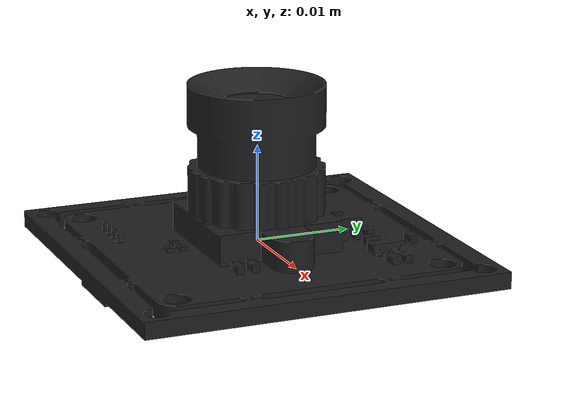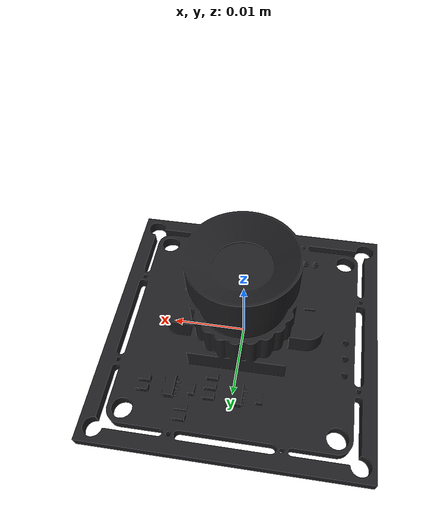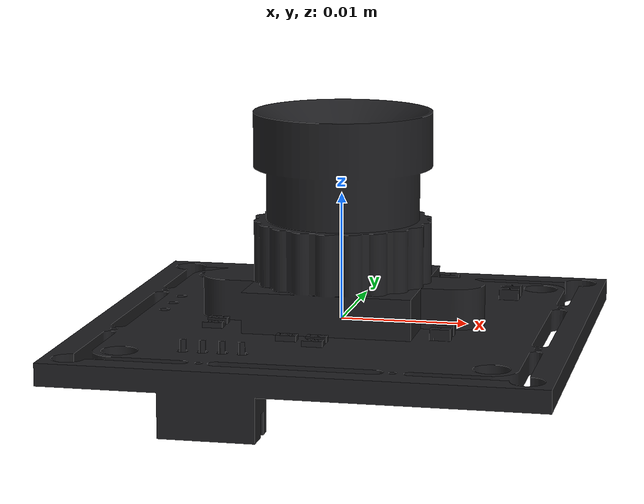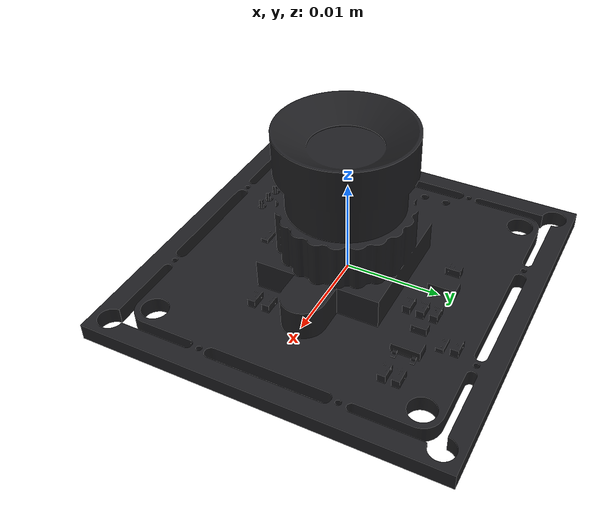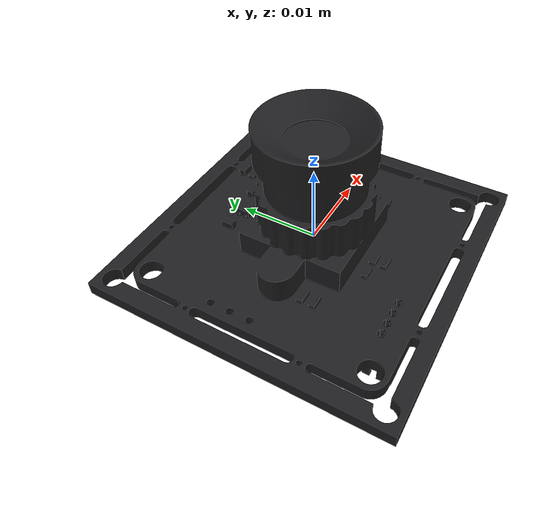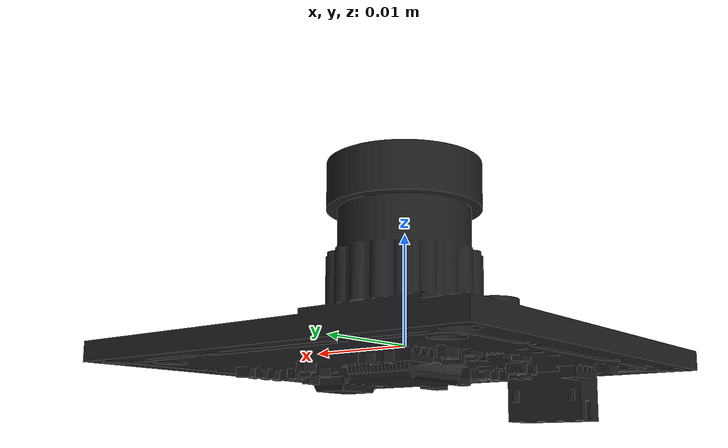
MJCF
<mujoco model="arducam_ov9782">
  <compiler angle="radian" meshdir="assets" autolimits="true"/>

  <asset>
    <mesh name="arducam_ov9782" file="arducam_ov9782.stl" scale="0.001 0.001 0.001"/>
  </asset>

  <worldbody>
    <body name="wrist_cam">
      <geom name="wrist_cam" type="mesh" mesh="arducam_ov9782" contype="0"
            conaffinity="0" mass="0" rgba="0.12 0.12 0.13 1"/>
      <camera name="wrist" quat="0 0.70710678 0.70710678 0" fovy="92" resolution="1280 800" user="15"/>
      <site name="arducam_hole_1" pos="-0.0140088 -0.013978 -0.000871" type="sphere" group="5" rgba="0.9 0.6 0.1 1" size="0.002"/>
      <site name="arducam_hole_2" pos="0.0139785 0.01399 -0.000871" type="sphere" group="5" rgba="0.9 0.6 0.1 1" size="0.002"/>
      <site name="arducam_hole_3" pos="0.0139763 -0.014 -0.000871" type="sphere" group="5" rgba="0.9 0.6 0.1 1" size="0.002"/>
      <site name="arducam_hole_4" pos="-0.0140215 0.01399 -0.000871" type="sphere" group="5" rgba="0.9 0.6 0.1 1" size="0.002"/>
    </body>
  </worldbody>
</mujoco>
